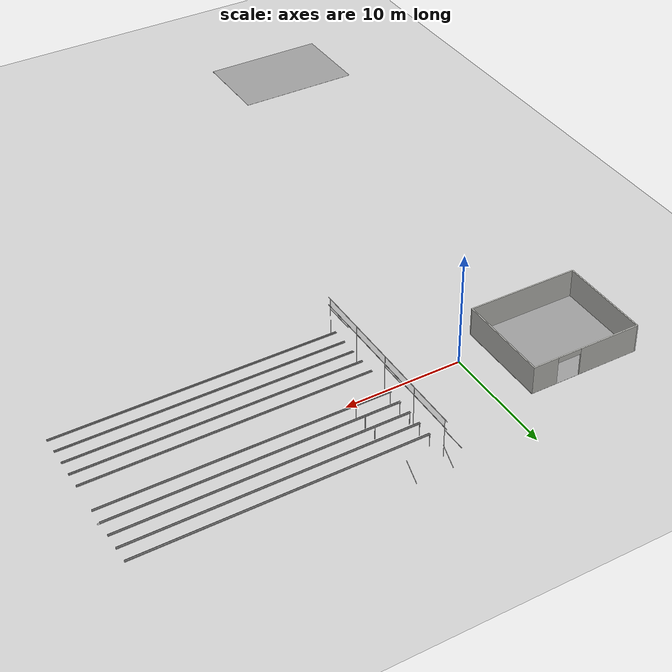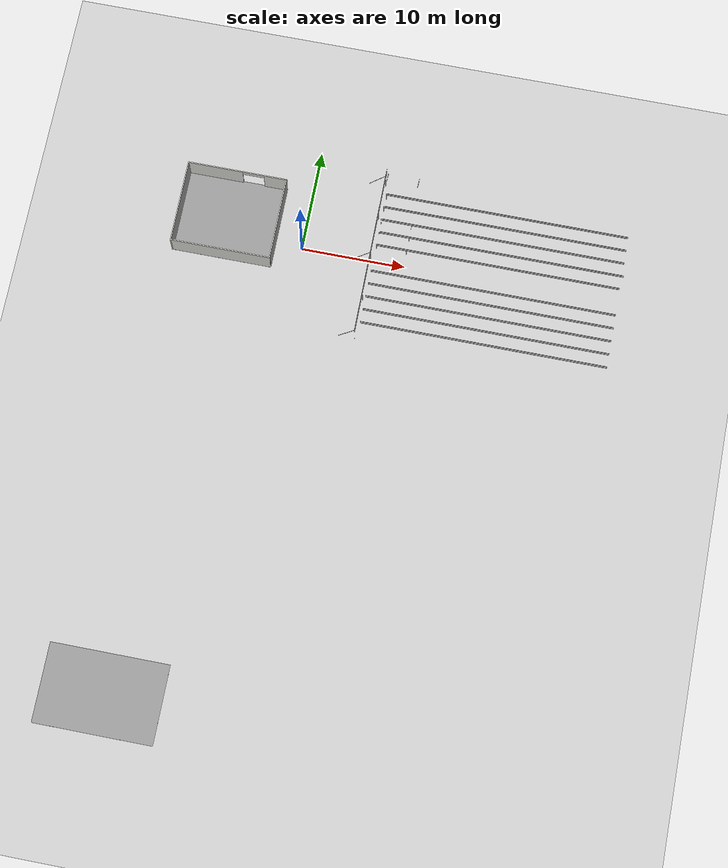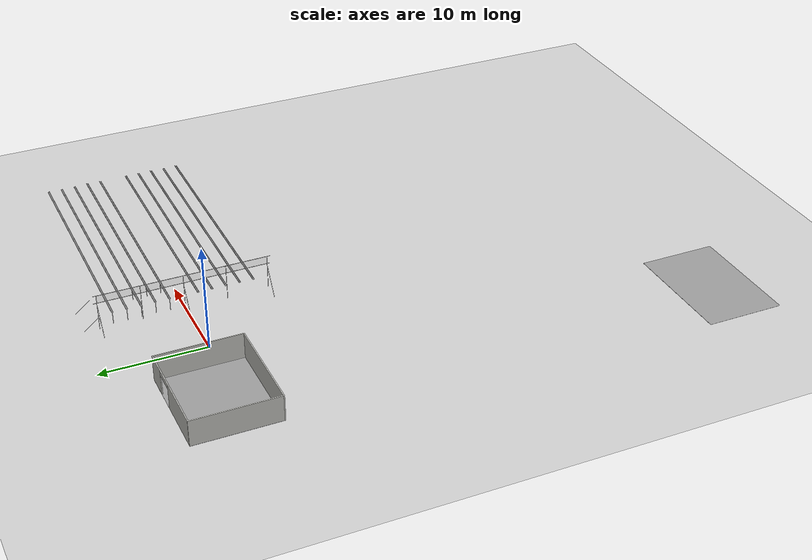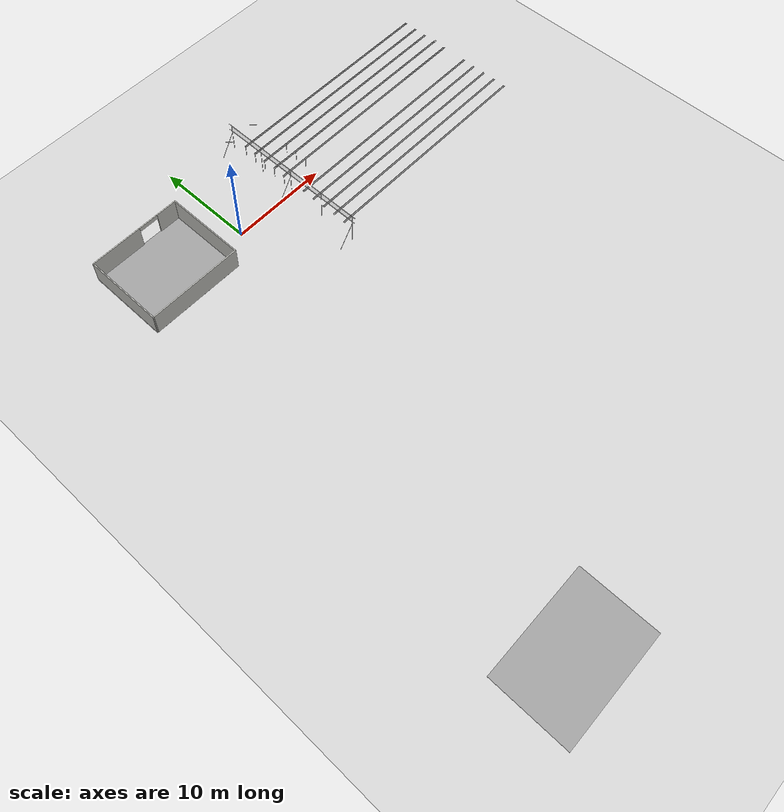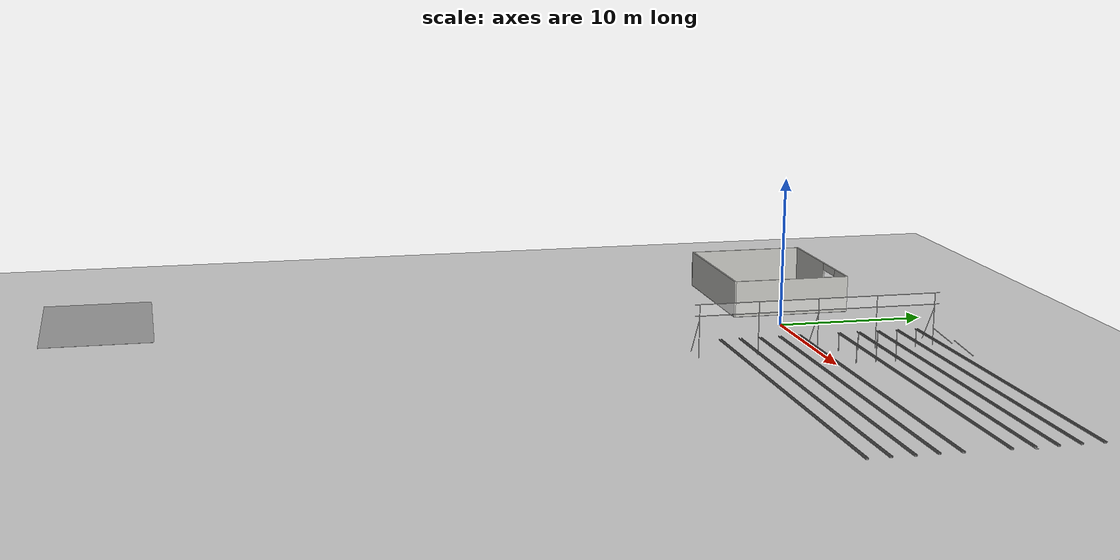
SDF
<sdf version="1.6">
 <world name="default">
  <model name="tray_0">
   <static>1</static>
   <link name="link_0">
    <collision name="collision"><geometry><box><size>23.62 0.15 0.005</size></box></geometry></collision>
    <visual name="visual">
     <geometry><box><size>23.62 0.15 0.005</size></box></geometry>
     <material>
      <script><uri>file://media/materials/scripts/gazebo.material</uri><name>Gazebo/Grey</name></script>
      <emissive>0 0 0 1</emissive>
      <shader type="vertex"><normal_map>__default__</normal_map></shader>
      <specular>0.01 0.01 0.01 1</specular>
      <lighting>1</lighting>
      <ambient>0.7 0.7 0.7 1</ambient>
      <diffuse>0.3 0.3 0.3 1</diffuse>
     </material>
    </visual>
    <pose>18.76 -6.64 1.14965 0 -0 0</pose>
   </link>
  </model>
  <model name="tray_1">
   <static>1</static>
   <link name="link_0">
    <collision name="collision"><geometry><box><size>23.62 0.15 0.005</size></box></geometry></collision>
    <visual name="visual">
     <geometry><box><size>23.62 0.15 0.005</size></box></geometry>
     <material>
      <script><uri>file://media/materials/scripts/gazebo.material</uri><name>Gazebo/Grey</name></script>
      <emissive>0 0 0 1</emissive>
      <shader type="vertex"><normal_map>__default__</normal_map></shader>
      <specular>0.01 0.01 0.01 1</specular>
      <lighting>1</lighting>
      <ambient>0.7 0.7 0.7 1</ambient>
      <diffuse>0.3 0.3 0.3 1</diffuse>
     </material>
    </visual>
    <pose>18.76 -5.32 1.14965 0 -0 0</pose>
   </link>
  </model>
  <model name="tray_2">
   <static>1</static>
   <link name="link_0">
    <collision name="collision"><geometry><box><size>23.62 0.15 0.005</size></box></geometry></collision>
    <visual name="visual">
     <geometry><box><size>23.62 0.15 0.005</size></box></geometry>
     <material>
      <script><uri>file://media/materials/scripts/gazebo.material</uri><name>Gazebo/Grey</name></script>
      <emissive>0 0 0 1</emissive>
      <shader type="vertex"><normal_map>__default__</normal_map></shader>
      <specular>0.01 0.01 0.01 1</specular>
      <lighting>1</lighting>
      <ambient>0.7 0.7 0.7 1</ambient>
      <diffuse>0.3 0.3 0.3 1</diffuse>
     </material>
    </visual>
    <pose>18.76 -4 1.14965 0 -0 0</pose>
   </link>
  </model>
  <model name="tray_3">
   <static>1</static>
   <link name="link_0">
    <collision name="collision"><geometry><box><size>23.62 0.15 0.005</size></box></geometry></collision>
    <visual name="visual">
     <geometry><box><size>23.62 0.15 0.005</size></box></geometry>
     <material>
      <script><uri>file://media/materials/scripts/gazebo.material</uri><name>Gazebo/Grey</name></script>
      <emissive>0 0 0 1</emissive>
      <shader type="vertex"><normal_map>__default__</normal_map></shader>
      <specular>0.01 0.01 0.01 1</specular>
      <lighting>1</lighting>
      <ambient>0.7 0.7 0.7 1</ambient>
      <diffuse>0.3 0.3 0.3 1</diffuse>
     </material>
    </visual>
    <pose>18.76 -2.68 1.14965 0 -0 0</pose>
   </link>
  </model>
  <model name="tray_4">
   <static>1</static>
   <link name="link_0">
    <collision name="collision"><geometry><box><size>23.62 0.15 0.005</size></box></geometry></collision>
    <visual name="visual">
     <geometry><box><size>23.62 0.15 0.005</size></box></geometry>
     <material>
      <script><uri>file://media/materials/scripts/gazebo.material</uri><name>Gazebo/Grey</name></script>
      <emissive>0 0 0 1</emissive>
      <shader type="vertex"><normal_map>__default__</normal_map></shader>
      <specular>0.01 0.01 0.01 1</specular>
      <lighting>1</lighting>
      <ambient>0.7 0.7 0.7 1</ambient>
      <diffuse>0.3 0.3 0.3 1</diffuse>
     </material>
    </visual>
    <pose>18.76 -1.36 1.14965 0 -0 0</pose>
   </link>
  </model>
  <model name="tray_p2_0">
   <static>1</static>
   <link name="link_0">
    <collision name="collision"><geometry><box><size>23.62 0.085 0.005</size></box></geometry></collision>
    <visual name="visual">
     <geometry><box><size>23.62 0.085 0.005</size></box></geometry>
     <material>
      <script><uri>file://media/materials/scripts/gazebo.material</uri><name>Gazebo/Grey</name></script>
      <emissive>0 0 0 1</emissive>
      <shader type="vertex"><normal_map>__default__</normal_map></shader>
      <specular>0.01 0.01 0.01 1</specular>
      <lighting>1</lighting>
      <ambient>0.7 0.7 0.7 1</ambient>
      <diffuse>0.3 0.3 0.3 1</diffuse>
     </material>
    </visual>
    <pose>18.76 -6.715 1.19165 1.5707 -0 0</pose>
   </link>
  </model>
  <model name="tray_p2_1">
   <static>1</static>
   <link name="link_0">
    <collision name="collision"><geometry><box><size>23.62 0.085 0.005</size></box></geometry></collision>
    <visual name="visual">
     <geometry><box><size>23.62 0.085 0.005</size></box></geometry>
     <material>
      <script><uri>file://media/materials/scripts/gazebo.material</uri><name>Gazebo/Grey</name></script>
      <emissive>0 0 0 1</emissive>
      <shader type="vertex"><normal_map>__default__</normal_map></shader>
      <specular>0.01 0.01 0.01 1</specular>
      <lighting>1</lighting>
      <ambient>0.7 0.7 0.7 1</ambient>
      <diffuse>0.3 0.3 0.3 1</diffuse>
     </material>
    </visual>
    <pose>18.76 -5.395 1.19165 1.5707 -0 0</pose>
   </link>
  </model>
  <model name="tray_p2_2">
   <static>1</static>
   <link name="link_0">
    <collision name="collision"><geometry><box><size>23.62 0.085 0.005</size></box></geometry></collision>
    <visual name="visual">
     <geometry><box><size>23.62 0.085 0.005</size></box></geometry>
     <material>
      <script><uri>file://media/materials/scripts/gazebo.material</uri><name>Gazebo/Grey</name></script>
      <emissive>0 0 0 1</emissive>
      <shader type="vertex"><normal_map>__default__</normal_map></shader>
      <specular>0.01 0.01 0.01 1</specular>
      <lighting>1</lighting>
      <ambient>0.7 0.7 0.7 1</ambient>
      <diffuse>0.3 0.3 0.3 1</diffuse>
     </material>
    </visual>
    <pose>18.76 -4.075 1.19165 1.5707 -0 0</pose>
   </link>
  </model>
  <model name="tray_p2_3">
   <static>1</static>
   <link name="link_0">
    <collision name="collision"><geometry><box><size>23.62 0.085 0.005</size></box></geometry></collision>
    <visual name="visual">
     <geometry><box><size>23.62 0.085 0.005</size></box></geometry>
     <material>
      <script><uri>file://media/materials/scripts/gazebo.material</uri><name>Gazebo/Grey</name></script>
      <emissive>0 0 0 1</emissive>
      <shader type="vertex"><normal_map>__default__</normal_map></shader>
      <specular>0.01 0.01 0.01 1</specular>
      <lighting>1</lighting>
      <ambient>0.7 0.7 0.7 1</ambient>
      <diffuse>0.3 0.3 0.3 1</diffuse>
     </material>
    </visual>
    <pose>18.76 -2.755 1.19165 1.5707 -0 0</pose>
   </link>
  </model>
  <model name="tray_p2_4">
   <static>1</static>
   <link name="link_0">
    <collision name="collision"><geometry><box><size>23.62 0.085 0.005</size></box></geometry></collision>
    <visual name="visual">
     <geometry><box><size>23.62 0.085 0.005</size></box></geometry>
     <material>
      <script><uri>file://media/materials/scripts/gazebo.material</uri><name>Gazebo/Grey</name></script>
      <emissive>0 0 0 1</emissive>
      <shader type="vertex"><normal_map>__default__</normal_map></shader>
      <specular>0.01 0.01 0.01 1</specular>
      <lighting>1</lighting>
      <ambient>0.7 0.7 0.7 1</ambient>
      <diffuse>0.3 0.3 0.3 1</diffuse>
     </material>
    </visual>
    <pose>18.76 -1.435 1.19165 1.5707 -0 0</pose>
   </link>
  </model>
  <model name="tray_p2_5">
   <static>1</static>
   <link name="link_0">
    <collision name="collision"><geometry><box><size>23.62 0.085 0.005</size></box></geometry></collision>
    <visual name="visual">
     <geometry><box><size>23.62 0.085 0.005</size></box></geometry>
     <material>
      <script><uri>file://media/materials/scripts/gazebo.material</uri><name>Gazebo/Grey</name></script>
      <emissive>0 0 0 1</emissive>
      <shader type="vertex"><normal_map>__default__</normal_map></shader>
      <specular>0.01 0.01 0.01 1</specular>
      <lighting>1</lighting>
      <ambient>0.7 0.7 0.7 1</ambient>
      <diffuse>0.3 0.3 0.3 1</diffuse>
     </material>
    </visual>
    <pose>18.76 -6.565 1.19165 1.5707 -0 0</pose>
   </link>
  </model>
  <model name="tray_p2_6">
   <static>1</static>
   <link name="link_0">
    <collision name="collision"><geometry><box><size>23.62 0.085 0.005</size></box></geometry></collision>
    <visual name="visual">
     <geometry><box><size>23.62 0.085 0.005</size></box></geometry>
     <material>
      <script><uri>file://media/materials/scripts/gazebo.material</uri><name>Gazebo/Grey</name></script>
      <emissive>0 0 0 1</emissive>
      <shader type="vertex"><normal_map>__default__</normal_map></shader>
      <specular>0.01 0.01 0.01 1</specular>
      <lighting>1</lighting>
      <ambient>0.7 0.7 0.7 1</ambient>
      <diffuse>0.3 0.3 0.3 1</diffuse>
     </material>
    </visual>
    <pose>18.76 -5.245 1.19165 1.5707 -0 0</pose>
   </link>
  </model>
  <model name="tray_p2_7">
   <static>1</static>
   <link name="link_0">
    <collision name="collision"><geometry><box><size>23.62 0.085 0.005</size></box></geometry></collision>
    <visual name="visual">
     <geometry><box><size>23.62 0.085 0.005</size></box></geometry>
     <material>
      <script><uri>file://media/materials/scripts/gazebo.material</uri><name>Gazebo/Grey</name></script>
      <emissive>0 0 0 1</emissive>
      <shader type="vertex"><normal_map>__default__</normal_map></shader>
      <specular>0.01 0.01 0.01 1</specular>
      <lighting>1</lighting>
      <ambient>0.7 0.7 0.7 1</ambient>
      <diffuse>0.3 0.3 0.3 1</diffuse>
     </material>
    </visual>
    <pose>18.76 -3.925 1.19165 1.5707 -0 0</pose>
   </link>
  </model>
  <model name="tray_p2_8">
   <static>1</static>
   <link name="link_0">
    <collision name="collision"><geometry><box><size>23.62 0.085 0.005</size></box></geometry></collision>
    <visual name="visual">
     <geometry><box><size>23.62 0.085 0.005</size></box></geometry>
     <material>
      <script><uri>file://media/materials/scripts/gazebo.material</uri><name>Gazebo/Grey</name></script>
      <emissive>0 0 0 1</emissive>
      <shader type="vertex"><normal_map>__default__</normal_map></shader>
      <specular>0.01 0.01 0.01 1</specular>
      <lighting>1</lighting>
      <ambient>0.7 0.7 0.7 1</ambient>
      <diffuse>0.3 0.3 0.3 1</diffuse>
     </material>
    </visual>
    <pose>18.76 -2.605 1.19165 1.5707 -0 0</pose>
   </link>
  </model>
  <model name="tray_p2_9">
   <static>1</static>
   <link name="link_0">
    <collision name="collision"><geometry><box><size>23.62 0.085 0.005</size></box></geometry></collision>
    <visual name="visual">
     <geometry><box><size>23.62 0.085 0.005</size></box></geometry>
     <material>
      <script><uri>file://media/materials/scripts/gazebo.material</uri><name>Gazebo/Grey</name></script>
      <emissive>0 0 0 1</emissive>
      <shader type="vertex"><normal_map>__default__</normal_map></shader>
      <specular>0.01 0.01 0.01 1</specular>
      <lighting>1</lighting>
      <ambient>0.7 0.7 0.7 1</ambient>
      <diffuse>0.3 0.3 0.3 1</diffuse>
     </material>
    </visual>
    <pose>18.76 -1.285 1.19165 1.5707 -0 0</pose>
   </link>
  </model>
  <model name="pole_45">
   <static>1</static>
   <pose>7 1.32 0.575 0 -0 0</pose>
   <link name="link">
    <collision name="collision">
     <geometry><cylinder><length>1.15</length><radius>0.025</radius></cylinder></geometry>
    </collision>
    <visual name="visual">
     <geometry><cylinder><length>1.15</length><radius>0.025</radius></cylinder></geometry>
     <material>
      <script><uri>file://media/materials/scripts/gazebo.material</uri><name>Gazebo/Chrome</name></script>
      <shader type="vertex"><normal_map>__default__</normal_map></shader>
      <emissive>0.1 0.1 0.1 1</emissive>
      <specular>0.01 0.01 0.01 1</specular>
      <ambient>0.5 0.5 0.5 1</ambient>
      <diffuse>0.05 0.05 0.05 1</diffuse>
     </material>
    </visual>
   </link>
  </model>
  <model name="pole_46">
   <static>1</static>
   <pose>7 2.64 0.575 0 -0 0</pose>
   <link name="link">
    <collision name="collision">
     <geometry><cylinder><length>1.15</length><radius>0.025</radius></cylinder></geometry>
    </collision>
    <visual name="visual">
     <geometry><cylinder><length>1.15</length><radius>0.025</radius></cylinder></geometry>
     <material>
      <script><uri>file://media/materials/scripts/gazebo.material</uri><name>Gazebo/Chrome</name></script>
      <shader type="vertex"><normal_map>__default__</normal_map></shader>
      <emissive>0.1 0.1 0.1 1</emissive>
      <specular>0.01 0.01 0.01 1</specular>
      <ambient>0.5 0.5 0.5 1</ambient>
      <diffuse>0.05 0.05 0.05 1</diffuse>
     </material>
    </visual>
   </link>
  </model>
  <model name="pole_47">
   <static>1</static>
   <pose>7 3.96 0.575 0 -0 0</pose>
   <link name="link">
    <collision name="collision">
     <geometry><cylinder><length>1.15</length><radius>0.025</radius></cylinder></geometry>
    </collision>
    <visual name="visual">
     <geometry><cylinder><length>1.15</length><radius>0.025</radius></cylinder></geometry>
     <material>
      <script><uri>file://media/materials/scripts/gazebo.material</uri><name>Gazebo/Chrome</name></script>
      <shader type="vertex"><normal_map>__default__</normal_map></shader>
      <emissive>0.1 0.1 0.1 1</emissive>
      <specular>0.01 0.01 0.01 1</specular>
      <ambient>0.5 0.5 0.5 1</ambient>
      <diffuse>0.05 0.05 0.05 1</diffuse>
     </material>
    </visual>
   </link>
  </model>
  <model name="pole_48">
   <static>1</static>
   <pose>7 5.28 0.575 0 -0 0</pose>
   <link name="link">
    <collision name="collision">
     <geometry><cylinder><length>1.15</length><radius>0.025</radius></cylinder></geometry>
    </collision>
    <visual name="visual">
     <geometry><cylinder><length>1.15</length><radius>0.025</radius></cylinder></geometry>
     <material>
      <script><uri>file://media/materials/scripts/gazebo.material</uri><name>Gazebo/Chrome</name></script>
      <shader type="vertex"><normal_map>__default__</normal_map></shader>
      <emissive>0.1 0.1 0.1 1</emissive>
      <specular>0.01 0.01 0.01 1</specular>
      <ambient>0.5 0.5 0.5 1</ambient>
      <diffuse>0.05 0.05 0.05 1</diffuse>
     </material>
    </visual>
   </link>
  </model>
  <model name="pole_49">
   <static>1</static>
   <pose>7 6.6 0.575 0 -0 0</pose>
   <link name="link">
    <collision name="collision">
     <geometry><cylinder><length>1.15</length><radius>0.025</radius></cylinder></geometry>
    </collision>
    <visual name="visual">
     <geometry><cylinder><length>1.15</length><radius>0.025</radius></cylinder></geometry>
     <material>
      <script><uri>file://media/materials/scripts/gazebo.material</uri><name>Gazebo/Chrome</name></script>
      <shader type="vertex"><normal_map>__default__</normal_map></shader>
      <emissive>0.1 0.1 0.1 1</emissive>
      <specular>0.01 0.01 0.01 1</specular>
      <ambient>0.5 0.5 0.5 1</ambient>
      <diffuse>0.05 0.05 0.05 1</diffuse>
     </material>
    </visual>
   </link>
  </model>
  <model name="pole_50">
   <static>1</static>
   <pose>9.94 1.32 0.575 0 -0 0</pose>
   <link name="link">
    <collision name="collision">
     <geometry><cylinder><length>1.15</length><radius>0.025</radius></cylinder></geometry>
    </collision>
    <visual name="visual">
     <geometry><cylinder><length>1.15</length><radius>0.025</radius></cylinder></geometry>
     <material>
      <script><uri>file://media/materials/scripts/gazebo.material</uri><name>Gazebo/Chrome</name></script>
      <shader type="vertex"><normal_map>__default__</normal_map></shader>
      <emissive>0.1 0.1 0.1 1</emissive>
      <specular>0.01 0.01 0.01 1</specular>
      <ambient>0.5 0.5 0.5 1</ambient>
      <diffuse>0.05 0.05 0.05 1</diffuse>
     </material>
    </visual>
   </link>
  </model>
  <model name="pole_51">
   <static>1</static>
   <pose>9.94 2.64 0.575 0 -0 0</pose>
   <link name="link">
    <collision name="collision">
     <geometry><cylinder><length>1.15</length><radius>0.025</radius></cylinder></geometry>
    </collision>
    <visual name="visual">
     <geometry><cylinder><length>1.15</length><radius>0.025</radius></cylinder></geometry>
     <material>
      <script><uri>file://media/materials/scripts/gazebo.material</uri><name>Gazebo/Chrome</name></script>
      <shader type="vertex"><normal_map>__default__</normal_map></shader>
      <emissive>0.1 0.1 0.1 1</emissive>
      <specular>0.01 0.01 0.01 1</specular>
      <ambient>0.5 0.5 0.5 1</ambient>
      <diffuse>0.05 0.05 0.05 1</diffuse>
     </material>
    </visual>
   </link>
  </model>
  <model name="pole_52">
   <static>1</static>
   <pose>9.94 3.96 0.575 0 -0 0</pose>
   <link name="link">
    <collision name="collision">
     <geometry><cylinder><length>1.15</length><radius>0.025</radius></cylinder></geometry>
    </collision>
    <visual name="visual">
     <geometry><cylinder><length>1.15</length><radius>0.025</radius></cylinder></geometry>
     <material>
      <script><uri>file://media/materials/scripts/gazebo.material</uri><name>Gazebo/Chrome</name></script>
      <shader type="vertex"><normal_map>__default__</normal_map></shader>
      <emissive>0.1 0.1 0.1 1</emissive>
      <specular>0.01 0.01 0.01 1</specular>
      <ambient>0.5 0.5 0.5 1</ambient>
      <diffuse>0.05 0.05 0.05 1</diffuse>
     </material>
    </visual>
   </link>
  </model>
  <model name="tray_5">
   <static>1</static>
   <link name="link_0">
    <collision name="collision"><geometry><box><size>23.62 0.15 0.005</size></box></geometry></collision>
    <visual name="visual">
     <geometry><box><size>23.62 0.15 0.005</size></box></geometry>
     <material>
      <script><uri>file://media/materials/scripts/gazebo.material</uri><name>Gazebo/Grey</name></script>
      <emissive>0 0 0 1</emissive>
      <shader type="vertex"><normal_map>__default__</normal_map></shader>
      <specular>0.01 0.01 0.01 1</specular>
      <lighting>1</lighting>
      <ambient>0.7 0.7 0.7 1</ambient>
      <diffuse>0.3 0.3 0.3 1</diffuse>
     </material>
    </visual>
    <pose>18.76 1.32 1.14965 0 -0 0</pose>
   </link>
  </model>
  <model name="tray_6">
   <pose>0.1761 -0.00319 0 0 -0 0</pose>
   <static>1</static>
   <link name="link_0">
    <collision name="collision"><geometry><box><size>23.62 0.15 0.005</size></box></geometry></collision>
    <visual name="visual">
     <geometry><box><size>23.62 0.15 0.005</size></box></geometry>
     <material>
      <script><uri>file://media/materials/scripts/gazebo.material</uri><name>Gazebo/Grey</name></script>
      <emissive>0 0 0 1</emissive>
      <shader type="vertex"><normal_map>__default__</normal_map></shader>
      <specular>0.01 0.01 0.01 1</specular>
      <lighting>1</lighting>
      <ambient>0.7 0.7 0.7 1</ambient>
      <diffuse>0.3 0.3 0.3 1</diffuse>
     </material>
    </visual>
    <pose>18.76 2.64 1.14965 0 -0 0</pose>
   </link>
  </model>
  <model name="tray_7">
   <static>1</static>
   <link name="link_0">
    <collision name="collision"><geometry><box><size>23.62 0.15 0.005</size></box></geometry></collision>
    <visual name="visual">
     <geometry><box><size>23.62 0.15 0.005</size></box></geometry>
     <material>
      <script><uri>file://media/materials/scripts/gazebo.material</uri><name>Gazebo/Grey</name></script>
      <emissive>0 0 0 1</emissive>
      <shader type="vertex"><normal_map>__default__</normal_map></shader>
      <specular>0.01 0.01 0.01 1</specular>
      <lighting>1</lighting>
      <ambient>0.7 0.7 0.7 1</ambient>
      <diffuse>0.3 0.3 0.3 1</diffuse>
     </material>
    </visual>
    <pose>18.76 3.96 1.14965 0 -0 0</pose>
   </link>
  </model>
  <model name="tray_8">
   <static>1</static>
   <link name="link_0">
    <collision name="collision"><geometry><box><size>23.62 0.15 0.005</size></box></geometry></collision>
    <visual name="visual">
     <geometry><box><size>23.62 0.15 0.005</size></box></geometry>
     <material>
      <script><uri>file://media/materials/scripts/gazebo.material</uri><name>Gazebo/Grey</name></script>
      <emissive>0 0 0 1</emissive>
      <shader type="vertex"><normal_map>__default__</normal_map></shader>
      <specular>0.01 0.01 0.01 1</specular>
      <lighting>1</lighting>
      <ambient>0.7 0.7 0.7 1</ambient>
      <diffuse>0.3 0.3 0.3 1</diffuse>
     </material>
    </visual>
    <pose>18.76 5.28 1.14965 0 -0 0</pose>
   </link>
  </model>
  <model name="tray_9">
   <static>1</static>
   <link name="link_0">
    <collision name="collision"><geometry><box><size>23.62 0.15 0.005</size></box></geometry></collision>
    <visual name="visual">
     <geometry><box><size>23.62 0.15 0.005</size></box></geometry>
     <material>
      <script><uri>file://media/materials/scripts/gazebo.material</uri><name>Gazebo/Grey</name></script>
      <emissive>0 0 0 1</emissive>
      <shader type="vertex"><normal_map>__default__</normal_map></shader>
      <specular>0.01 0.01 0.01 1</specular>
      <lighting>1</lighting>
      <ambient>0.7 0.7 0.7 1</ambient>
      <diffuse>0.3 0.3 0.3 1</diffuse>
     </material>
    </visual>
    <pose>18.76 6.6 1.14965 0 -0 0</pose>
   </link>
  </model>
  <model name="tray_p2_10">
   <static>1</static>
   <link name="link_0">
    <collision name="collision"><geometry><box><size>23.62 0.085 0.005</size></box></geometry></collision>
    <visual name="visual">
     <geometry><box><size>23.62 0.085 0.005</size></box></geometry>
     <material>
      <script><uri>file://media/materials/scripts/gazebo.material</uri><name>Gazebo/Grey</name></script>
      <emissive>0 0 0 1</emissive>
      <shader type="vertex"><normal_map>__default__</normal_map></shader>
      <specular>0.01 0.01 0.01 1</specular>
      <lighting>1</lighting>
      <ambient>0.7 0.7 0.7 1</ambient>
      <diffuse>0.3 0.3 0.3 1</diffuse>
     </material>
    </visual>
    <pose>18.76 1.245 1.19165 1.5707 -0 0</pose>
   </link>
  </model>
  <model name="tray_p2_11">
   <static>1</static>
   <link name="link_0">
    <collision name="collision"><geometry><box><size>23.62 0.085 0.005</size></box></geometry></collision>
    <visual name="visual">
     <geometry><box><size>23.62 0.085 0.005</size></box></geometry>
     <material>
      <script><uri>file://media/materials/scripts/gazebo.material</uri><name>Gazebo/Grey</name></script>
      <emissive>0 0 0 1</emissive>
      <shader type="vertex"><normal_map>__default__</normal_map></shader>
      <specular>0.01 0.01 0.01 1</specular>
      <lighting>1</lighting>
      <ambient>0.7 0.7 0.7 1</ambient>
      <diffuse>0.3 0.3 0.3 1</diffuse>
     </material>
    </visual>
    <pose>18.76 2.565 1.19165 1.5707 -0 0</pose>
   </link>
  </model>
  <model name="tray_p2_12">
   <static>1</static>
   <link name="link_0">
    <collision name="collision"><geometry><box><size>23.62 0.085 0.005</size></box></geometry></collision>
    <visual name="visual">
     <geometry><box><size>23.62 0.085 0.005</size></box></geometry>
     <material>
      <script><uri>file://media/materials/scripts/gazebo.material</uri><name>Gazebo/Grey</name></script>
      <emissive>0 0 0 1</emissive>
      <shader type="vertex"><normal_map>__default__</normal_map></shader>
      <specular>0.01 0.01 0.01 1</specular>
      <lighting>1</lighting>
      <ambient>0.7 0.7 0.7 1</ambient>
      <diffuse>0.3 0.3 0.3 1</diffuse>
     </material>
    </visual>
    <pose>18.76 3.885 1.19165 1.5707 -0 0</pose>
   </link>
  </model>
  <model name="tray_p2_13">
   <static>1</static>
   <link name="link_0">
    <collision name="collision"><geometry><box><size>23.62 0.085 0.005</size></box></geometry></collision>
    <visual name="visual">
     <geometry><box><size>23.62 0.085 0.005</size></box></geometry>
     <material>
      <script><uri>file://media/materials/scripts/gazebo.material</uri><name>Gazebo/Grey</name></script>
      <emissive>0 0 0 1</emissive>
      <shader type="vertex"><normal_map>__default__</normal_map></shader>
      <specular>0.01 0.01 0.01 1</specular>
      <lighting>1</lighting>
      <ambient>0.7 0.7 0.7 1</ambient>
      <diffuse>0.3 0.3 0.3 1</diffuse>
     </material>
    </visual>
    <pose>18.76 5.205 1.19165 1.5707 -0 0</pose>
   </link>
  </model>
  <model name="tray_p2_14">
   <static>1</static>
   <link name="link_0">
    <collision name="collision"><geometry><box><size>23.62 0.085 0.005</size></box></geometry></collision>
    <visual name="visual">
     <geometry><box><size>23.62 0.085 0.005</size></box></geometry>
     <material>
      <script><uri>file://media/materials/scripts/gazebo.material</uri><name>Gazebo/Grey</name></script>
      <emissive>0 0 0 1</emissive>
      <shader type="vertex"><normal_map>__default__</normal_map></shader>
      <specular>0.01 0.01 0.01 1</specular>
      <lighting>1</lighting>
      <ambient>0.7 0.7 0.7 1</ambient>
      <diffuse>0.3 0.3 0.3 1</diffuse>
     </material>
    </visual>
    <pose>18.76 6.525 1.19165 1.5707 -0 0</pose>
   </link>
  </model>
  <model name="tray_p2_15">
   <static>1</static>
   <link name="link_0">
    <collision name="collision"><geometry><box><size>23.62 0.085 0.005</size></box></geometry></collision>
    <visual name="visual">
     <geometry><box><size>23.62 0.085 0.005</size></box></geometry>
     <material>
      <script><uri>file://media/materials/scripts/gazebo.material</uri><name>Gazebo/Grey</name></script>
      <emissive>0 0 0 1</emissive>
      <shader type="vertex"><normal_map>__default__</normal_map></shader>
      <specular>0.01 0.01 0.01 1</specular>
      <lighting>1</lighting>
      <ambient>0.7 0.7 0.7 1</ambient>
      <diffuse>0.3 0.3 0.3 1</diffuse>
     </material>
    </visual>
    <pose>18.76 1.395 1.19165 1.5707 -0 0</pose>
   </link>
  </model>
  <model name="tray_p2_16">
   <static>1</static>
   <link name="link_0">
    <collision name="collision"><geometry><box><size>23.62 0.085 0.005</size></box></geometry></collision>
    <visual name="visual">
     <geometry><box><size>23.62 0.085 0.005</size></box></geometry>
     <material>
      <script><uri>file://media/materials/scripts/gazebo.material</uri><name>Gazebo/Grey</name></script>
      <emissive>0 0 0 1</emissive>
      <shader type="vertex"><normal_map>__default__</normal_map></shader>
      <specular>0.01 0.01 0.01 1</specular>
      <lighting>1</lighting>
      <ambient>0.7 0.7 0.7 1</ambient>
      <diffuse>0.3 0.3 0.3 1</diffuse>
     </material>
    </visual>
    <pose>18.76 2.715 1.19165 1.5707 -0 0</pose>
   </link>
  </model>
  <model name="tray_p2_17">
   <static>1</static>
   <link name="link_0">
    <collision name="collision"><geometry><box><size>23.62 0.085 0.005</size></box></geometry></collision>
    <visual name="visual">
     <geometry><box><size>23.62 0.085 0.005</size></box></geometry>
     <material>
      <script><uri>file://media/materials/scripts/gazebo.material</uri><name>Gazebo/Grey</name></script>
      <emissive>0 0 0 1</emissive>
      <shader type="vertex"><normal_map>__default__</normal_map></shader>
      <specular>0.01 0.01 0.01 1</specular>
      <lighting>1</lighting>
      <ambient>0.7 0.7 0.7 1</ambient>
      <diffuse>0.3 0.3 0.3 1</diffuse>
     </material>
    </visual>
    <pose>18.76 4.035 1.19165 1.5707 -0 0</pose>
   </link>
  </model>
  <model name="tray_p2_18">
   <static>1</static>
   <link name="link_0">
    <collision name="collision"><geometry><box><size>23.62 0.085 0.005</size></box></geometry></collision>
    <visual name="visual">
     <geometry><box><size>23.62 0.085 0.005</size></box></geometry>
     <material>
      <script><uri>file://media/materials/scripts/gazebo.material</uri><name>Gazebo/Grey</name></script>
      <emissive>0 0 0 1</emissive>
      <shader type="vertex"><normal_map>__default__</normal_map></shader>
      <specular>0.01 0.01 0.01 1</specular>
      <lighting>1</lighting>
      <ambient>0.7 0.7 0.7 1</ambient>
      <diffuse>0.3 0.3 0.3 1</diffuse>
     </material>
    </visual>
    <pose>18.76 5.355 1.19165 1.5707 -0 0</pose>
   </link>
  </model>
  <model name="tray_p2_19">
   <static>1</static>
   <link name="link_0">
    <collision name="collision"><geometry><box><size>23.62 0.085 0.005</size></box></geometry></collision>
    <visual name="visual">
     <geometry><box><size>23.62 0.085 0.005</size></box></geometry>
     <material>
      <script><uri>file://media/materials/scripts/gazebo.material</uri><name>Gazebo/Grey</name></script>
      <emissive>0 0 0 1</emissive>
      <shader type="vertex"><normal_map>__default__</normal_map></shader>
      <specular>0.01 0.01 0.01 1</specular>
      <lighting>1</lighting>
      <ambient>0.7 0.7 0.7 1</ambient>
      <diffuse>0.3 0.3 0.3 1</diffuse>
     </material>
    </visual>
    <pose>18.76 6.675 1.19165 1.5707 -0 0</pose>
   </link>
  </model>
  <model name="strut_9">
   <static>1</static>
   <pose>6.74 8.62 0.536 0.896 -0 0</pose>
   <link name="link">
    <collision name="collision">
     <geometry><cylinder><length>1.76</length><radius>0.02</radius></cylinder></geometry>
    </collision>
    <visual name="visual">
     <geometry><cylinder><length>1.76</length><radius>0.02</radius></cylinder></geometry>
     <material>
      <script><uri>file://media/materials/scripts/gazebo.material</uri><name>Gazebo/Chrome</name></script>
      <shader type="vertex"><normal_map>__default__</normal_map></shader>
      <emissive>0.1 0.1 0.1 1</emissive>
      <specular>0.01 0.01 0.01 1</specular>
      <ambient>0.5 0.5 0.5 1</ambient>
      <diffuse>0.05 0.05 0.05 1</diffuse>
     </material>
    </visual>
   </link>
  </model>
  <model name="strut_10">
   <static>1</static>
   <pose>9.8 8.62 0.536 0.896 -0 0</pose>
   <link name="link">
    <collision name="collision">
     <geometry><cylinder><length>1.76</length><radius>0.02</radius></cylinder></geometry>
    </collision>
    <visual name="visual">
     <geometry><cylinder><length>1.76</length><radius>0.02</radius></cylinder></geometry>
     <material>
      <script><uri>file://media/materials/scripts/gazebo.material</uri><name>Gazebo/Chrome</name></script>
      <shader type="vertex"><normal_map>__default__</normal_map></shader>
      <emissive>0.1 0.1 0.1 1</emissive>
      <specular>0.01 0.01 0.01 1</specular>
      <ambient>0.5 0.5 0.5 1</ambient>
      <diffuse>0.05 0.05 0.05 1</diffuse>
     </material>
    </visual>
   </link>
  </model>
  <model name="frontage_0">
   <static>1</static>
   <link name="link_1">
    <collision name="collision">
     <geometry><cylinder><length>3.5</length><radius>0.02</radius></cylinder></geometry>
    </collision>
    <visual name="visual">
     <geometry><cylinder><length>3.5</length><radius>0.02</radius></cylinder></geometry>
     <material>
      <script><uri>file://media/materials/scripts/gazebo.material</uri><name>Gazebo/Chrome</name></script>
      <shader type="vertex"><normal_map>__default__</normal_map></shader>
      <emissive>0.1 0.1 0.1 1</emissive>
      <specular>0.01 0.01 0.01 1</specular>
      <ambient>0.5 0.5 0.5 1</ambient>
      <diffuse>0.05 0.05 0.05 1</diffuse>
     </material>
    </visual>
    <pose>6.68 -7.94 1.7 0 -0 0</pose>
   </link>
   <link name="link_2">
    <collision name="collision">
     <geometry><cylinder><length>3.5</length><radius>0.02</radius></cylinder></geometry>
    </collision>
    <visual name="visual">
     <geometry><cylinder><length>3.5</length><radius>0.02</radius></cylinder></geometry>
     <material>
      <script><uri>file://media/materials/scripts/gazebo.material</uri><name>Gazebo/Chrome</name></script>
      <shader type="vertex"><normal_map>__default__</normal_map></shader>
      <emissive>0.1 0.1 0.1 1</emissive>
      <specular>0.01 0.01 0.01 1</specular>
      <ambient>0.5 0.5 0.5 1</ambient>
      <diffuse>0.05 0.05 0.05 1</diffuse>
     </material>
    </visual>
    <pose>6.68 0 1.7 0 -0 0</pose>
   </link>
   <link name="link_3">
    <collision name="collision">
     <geometry><cylinder><length>3.5</length><radius>0.02</radius></cylinder></geometry>
    </collision>
    <visual name="visual">
     <geometry><cylinder><length>3.5</length><radius>0.02</radius></cylinder></geometry>
     <material>
      <script><uri>file://media/materials/scripts/gazebo.material</uri><name>Gazebo/Chrome</name></script>
      <shader type="vertex"><normal_map>__default__</normal_map></shader>
      <emissive>0.1 0.1 0.1 1</emissive>
      <specular>0.01 0.01 0.01 1</specular>
      <ambient>0.5 0.5 0.5 1</ambient>
      <diffuse>0.05 0.05 0.05 1</diffuse>
     </material>
    </visual>
    <pose>6.68 7.93 1.7 0 -0 0</pose>
   </link>
   <link name="link_10">
    <collision name="collision">
     <geometry><cylinder><length>3.5</length><radius>0.02</radius></cylinder></geometry>
    </collision>
    <visual name="visual">
     <geometry><cylinder><length>3.5</length><radius>0.02</radius></cylinder></geometry>
     <material>
      <script><uri>file://media/materials/scripts/gazebo.material</uri><name>Gazebo/Chrome</name></script>
      <shader type="vertex"><normal_map>__default__</normal_map></shader>
      <emissive>0.1 0.1 0.1 1</emissive>
      <specular>0.01 0.01 0.01 1</specular>
      <ambient>0.5 0.5 0.5 1</ambient>
      <diffuse>0.05 0.05 0.05 1</diffuse>
     </material>
    </visual>
    <pose>6.68 -4 1.7 0 -0 0</pose>
   </link>
   <link name="link_11">
    <collision name="collision">
     <geometry><cylinder><length>3.5</length><radius>0.02</radius></cylinder></geometry>
    </collision>
    <visual name="visual">
     <geometry><cylinder><length>3.5</length><radius>0.02</radius></cylinder></geometry>
     <material>
      <script><uri>file://media/materials/scripts/gazebo.material</uri><name>Gazebo/Chrome</name></script>
      <shader type="vertex"><normal_map>__default__</normal_map></shader>
      <emissive>0.1 0.1 0.1 1</emissive>
      <specular>0.01 0.01 0.01 1</specular>
      <ambient>0.5 0.5 0.5 1</ambient>
      <diffuse>0.05 0.05 0.05 1</diffuse>
     </material>
    </visual>
    <pose>6.68 3.96 1.7 0 -0 0</pose>
   </link>
   <link name="link_4">
    <collision name="collision">
     <geometry><cylinder><length>16.5</length><radius>0.02</radius></cylinder></geometry>
    </collision>
    <visual name="visual">
     <geometry><cylinder><length>16.5</length><radius>0.02</radius></cylinder></geometry>
     <material>
      <script><uri>file://media/materials/scripts/gazebo.material</uri><name>Gazebo/Chrome</name></script>
      <shader type="vertex"><normal_map>__default__</normal_map></shader>
      <emissive>0.1 0.1 0.1 1</emissive>
      <specular>0.01 0.01 0.01 1</specular>
      <ambient>0.5 0.5 0.5 1</ambient>
      <diffuse>0.05 0.05 0.05 1</diffuse>
     </material>
    </visual>
    <pose>6.68 0 2.7 1.5707 -0 0</pose>
   </link>
   <link name="link_5">
    <collision name="collision">
     <geometry><cylinder><length>16.5</length><radius>0.02</radius></cylinder></geometry>
    </collision>
    <visual name="visual">
     <geometry><cylinder><length>16.5</length><radius>0.02</radius></cylinder></geometry>
     <material>
      <script><uri>file://media/materials/scripts/gazebo.material</uri><name>Gazebo/Chrome</name></script>
      <shader type="vertex"><normal_map>__default__</normal_map></shader>
      <emissive>0.1 0.1 0.1 1</emissive>
      <specular>0.01 0.01 0.01 1</specular>
      <ambient>0.5 0.5 0.5 1</ambient>
      <diffuse>0.05 0.05 0.05 1</diffuse>
     </material>
    </visual>
    <pose>6.68 0 3.45 1.5707 -0 0</pose>
   </link>
   <link name="link_6">
    <collision name="collision">
     <geometry><cylinder><length>2.93</length><radius>0.02</radius></cylinder></geometry>
    </collision>
    <visual name="visual">
     <geometry><cylinder><length>2.93</length><radius>0.02</radius></cylinder></geometry>
     <material>
      <script><uri>file://media/materials/scripts/gazebo.material</uri><name>Gazebo/Chrome</name></script>
      <shader type="vertex"><normal_map>__default__</normal_map></shader>
      <emissive>0.1 0.1 0.1 1</emissive>
      <specular>0.01 0.01 0.01 1</specular>
      <ambient>0.5 0.5 0.5 1</ambient>
      <diffuse>0.05 0.05 0.05 1</diffuse>
     </material>
    </visual>
    <pose>5.89 -7.94 1.225 0 0.565 0</pose>
   </link>
   <link name="link_7">
    <collision name="collision">
     <geometry><cylinder><length>2.93</length><radius>0.02</radius></cylinder></geometry>
    </collision>
    <visual name="visual">
     <geometry><cylinder><length>2.93</length><radius>0.02</radius></cylinder></geometry>
     <material>
      <script><uri>file://media/materials/scripts/gazebo.material</uri><name>Gazebo/Chrome</name></script>
      <shader type="vertex"><normal_map>__default__</normal_map></shader>
      <emissive>0.1 0.1 0.1 1</emissive>
      <specular>0.01 0.01 0.01 1</specular>
      <ambient>0.5 0.5 0.5 1</ambient>
      <diffuse>0.05 0.05 0.05 1</diffuse>
     </material>
    </visual>
    <pose>5.89 0 1.225 0 0.565 0</pose>
   </link>
   <link name="link_8">
    <collision name="collision">
     <geometry><cylinder><length>2.93</length><radius>0.02</radius></cylinder></geometry>
    </collision>
    <visual name="visual">
     <geometry><cylinder><length>2.93</length><radius>0.02</radius></cylinder></geometry>
     <material>
      <script><uri>file://media/materials/scripts/gazebo.material</uri><name>Gazebo/Chrome</name></script>
      <shader type="vertex"><normal_map>__default__</normal_map></shader>
      <emissive>0.1 0.1 0.1 1</emissive>
      <specular>0.01 0.01 0.01 1</specular>
      <ambient>0.5 0.5 0.5 1</ambient>
      <diffuse>0.05 0.05 0.05 1</diffuse>
     </material>
    </visual>
    <pose>5.89 7.93 1.225 0 0.565 0</pose>
   </link>
   <link name="link_9">
    <collision name="collision"><geometry><box><size>0.002 15.87 0.75</size></box></geometry></collision>
    <visual name="visual">
     <geometry><box><size>0.002 15.87 0.75</size></box></geometry>
     <material>
      <emissive>1 1 1 1</emissive>
      <shader type="vertex"><normal_map>__default__</normal_map></shader>
      <specular>1 1 1 1</specular>
      <lighting>1</lighting>
      <ambient>1 1 1 1</ambient>
      <diffuse>1 1 1 1</diffuse>
     </material>
     <transparency>0.65</transparency>
    </visual>
    <pose>6.68 0 3.075 0 -0 0</pose>
   </link>
  </model>
  <model name="food_handling_shed_0">
   <static>1</static>
   <pose>-7.47 1.67 0 0 -0 3.141</pose>
   <link name="Wall_5">
    <collision name="Wall_5_Collision">
     <geometry><box><size>9.70037 0.1 2.5</size></box></geometry>
     <pose>0 0 1.25 0 -0 0</pose>
    </collision>
    <visual name="Wall_5_Visual">
     <geometry><box><size>9.70037 0.1 2.5</size></box></geometry>
     <meta><layer>0</layer></meta>
     <material>
      <script><uri>file://media/materials/scripts/gazebo.material</uri><name>Gazebo/CeilingTiled</name></script>
      <ambient>1 1 1 1</ambient>
     </material>
     <pose>0 0 1.25 0 -0 0</pose>
    </visual>
    <pose>-0 4.05 0 0 -0 0</pose>
   </link>
   <link name="Wall_6">
    <collision name="Wall_6_Collision">
     <geometry><box><size>8.20047 0.1 2.5</size></box></geometry>
     <pose>0 0 1.25 0 -0 0</pose>
    </collision>
    <visual name="Wall_6_Visual">
     <geometry><box><size>8.20047 0.1 2.5</size></box></geometry>
     <meta><layer>0</layer></meta>
     <material>
      <script><uri>file://media/materials/scripts/gazebo.material</uri><name>Gazebo/CeilingTiled</name></script>
      <ambient>1 1 1 1</ambient>
     </material>
     <pose>0 0 1.25 0 -0 0</pose>
    </visual>
    <pose>4.8 -0 0 0 -0 -1.5708</pose>
   </link>
   <link name="Wall_7">
    <collision name="Wall_7_Collision_0">
     <geometry><box><size>5.3757 0.1 2.5</size></box></geometry>
     <pose>-2.16197 0 1.25 0 -0 0</pose>
    </collision>
    <collision name="Wall_7_Collision_1">
     <geometry><box><size>2.23943 0.1 2.5</size></box></geometry>
     <pose>3.7301 0 1.25 0 -0 0</pose>
    </collision>
    <collision name="Wall_7_Collision_2">
     <geometry><box><size>2.0845 0.1 0.5</size></box></geometry>
     <pose>1.56813 0 2.25 0 -0 0</pose>
    </collision>
    <visual name="Wall_7_Visual_0">
     <geometry><box><size>5.3757 0.1 2.5</size></box></geometry>
     <meta><layer>0</layer></meta>
     <material>
      <script><uri>file://media/materials/scripts/gazebo.material</uri><name>Gazebo/CeilingTiled</name></script>
      <ambient>1 1 1 1</ambient>
     </material>
     <pose>-2.16197 0 1.25 0 -0 0</pose>
    </visual>
    <visual name="Wall_7_Visual_1">
     <geometry><box><size>2.23943 0.1 2.5</size></box></geometry>
     <meta><layer>0</layer></meta>
     <material>
      <script><uri>file://media/materials/scripts/gazebo.material</uri><name>Gazebo/CeilingTiled</name></script>
      <ambient>1 1 1 1</ambient>
     </material>
     <pose>3.7301 0 1.25 0 -0 0</pose>
    </visual>
    <visual name="Wall_7_Visual_2">
     <geometry><box><size>2.0845 0.1 0.5</size></box></geometry>
     <meta><layer>0</layer></meta>
     <material>
      <script><uri>file://media/materials/scripts/gazebo.material</uri><name>Gazebo/CeilingTiled</name></script>
      <ambient>1 1 1 1</ambient>
     </material>
     <pose>1.56813 0 2.25 0 -0 0</pose>
    </visual>
    <pose>-0 -4.05 0 0 -0 3.14159</pose>
   </link>
   <link name="Wall_8">
    <collision name="Wall_8_Collision">
     <geometry><box><size>8.19953 0.1 2.5</size></box></geometry>
     <pose>0 0 1.25 0 -0 0</pose>
    </collision>
    <visual name="Wall_8_Visual">
     <geometry><box><size>8.19953 0.1 2.5</size></box></geometry>
     <meta><layer>0</layer></meta>
     <material>
      <script><uri>file://media/materials/scripts/gazebo.material</uri><name>Gazebo/CeilingTiled</name></script>
      <ambient>1 1 1 1</ambient>
     </material>
     <pose>0 0 1.25 0 -0 0</pose>
    </visual>
    <pose>-4.8 -0 0 0 -0 1.5708</pose>
   </link>
  </model>
  <model name="fhs_floor_0">
   <static>1</static>
   <link name="link_0">
    <collision name="collision"><geometry><box><size>9.75 8.2 0.001</size></box></geometry></collision>
    <visual name="visual">
     <geometry><box><size>9.75 8.2 0.01</size></box></geometry>
     <material>
      <script><uri>file://media/materials/scripts/gazebo.material</uri><name>Gazebo/Grey</name></script>
      <emissive>0 0 0 1</emissive>
      <shader type="vertex"><normal_map>__default__</normal_map></shader>
      <specular>0.01 0.01 0.01 1</specular>
      <lighting>1</lighting>
      <ambient>0.3 0.3 0.3 1</ambient>
      <diffuse>0.7 0.7 0.7 1</diffuse>
     </material>
    </visual>
    <pose>-7.47 1.67 -0.001 0 -0 3.141</pose>
   </link>
  </model>
  <model name="lab_floor_0">
   <static>1</static>
   <link name="link_0">
    <collision name="collision"><geometry><box><size>11.2 7.45 0.001</size></box></geometry></collision>
    <visual name="visual">
     <geometry><box><size>11.2 7.45 0.01</size></box></geometry>
     <material>
      <script><uri>file://media/materials/scripts/gazebo.material</uri><name>Gazebo/Grey</name></script>
      <emissive>0 0 0 1</emissive>
      <shader type="vertex"><normal_map>__default__</normal_map></shader>
      <specular>0.01 0.01 0.01 1</specular>
      <lighting>1</lighting>
      <ambient>0.3 0.3 0.3 1</ambient>
      <diffuse>0.7 0.7 0.7 1</diffuse>
     </material>
    </visual>
    <pose>-9.438 -45.426 -0.001 0 -0 0</pose>
   </link>
  </model>
  <model name="grass_ground_plane">
   <static>1</static>
   <link name="link">
    <collision name="collision">
     <geometry><plane><normal>0 0 1</normal><size>200 200</size></plane></geometry>
     <surface><friction><ode><mu>0.5</mu><mu2>0.5</mu2></ode></friction></surface>
    </collision>
    <visual name="visual">
     <cast_shadows>0</cast_shadows>
     <geometry><plane><normal>0 0 1</normal><size>200 200</size></plane></geometry>
     <material>
      <script>
       <uri>model://grass_ground_plane/materials/scripts/grass_ground_plane.material</uri>
       <name>GrassGroundPlane/Image</name>
      </script>
     </material>
    </visual>
   </link>
  </model>
 </world>
</sdf>
